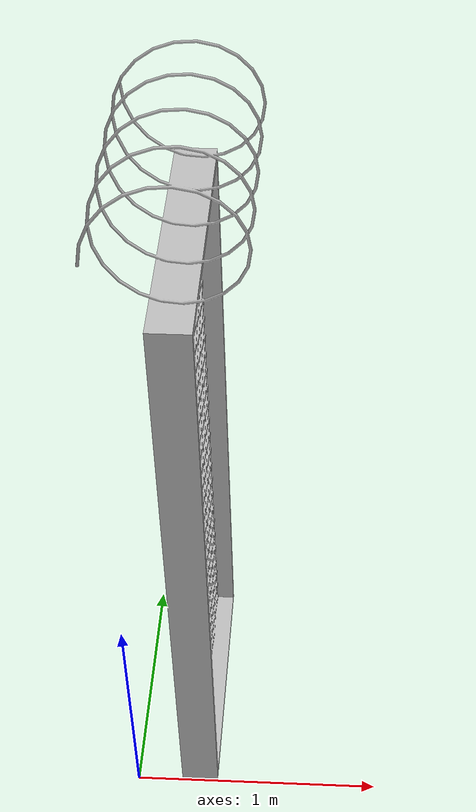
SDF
<?xml version="1.0" ?>
<sdf version='1.5'>
  <model name='outdoor_fence_duck'>
    <static>true</static>
      <link name='outdoor_fence_duck'>
        <pose frame=''>0 0 0 1.570796 0 1.570796</pose>
         <collision name='outdoor_fence_duck'>
          <geometry>
            <mesh>
              <scale>0.001 0.001 0.001</scale>
              <uri>model://outdoor_fence_duck/meshes/outdoor_fence.STL</uri>
            </mesh>
          </geometry>
          <max_contacts>10</max_contacts>
        </collision>
        <visual name='outdoor_fence_duck'>
        <cast_shadows>false</cast_shadows>
          <geometry>
            <mesh>
              <scale>0.001 0.001 0.001</scale>
              <uri>model://outdoor_fence_duck/meshes/outdoor_fence.STL</uri>
            </mesh>
          </geometry>
          <material>
            duck/hairline_metal
          </material>
        </visual>
      </link>
  </model>
</sdf>
